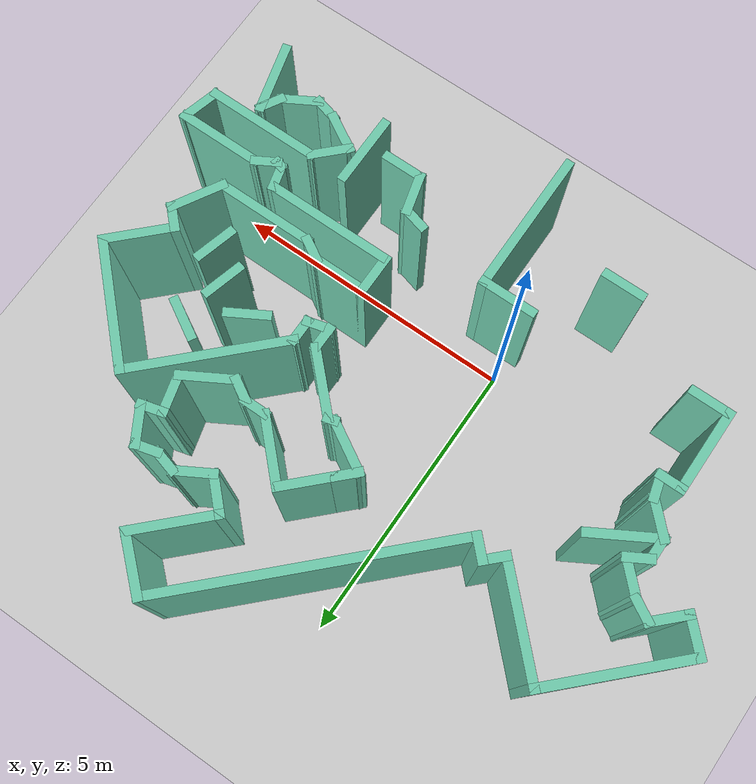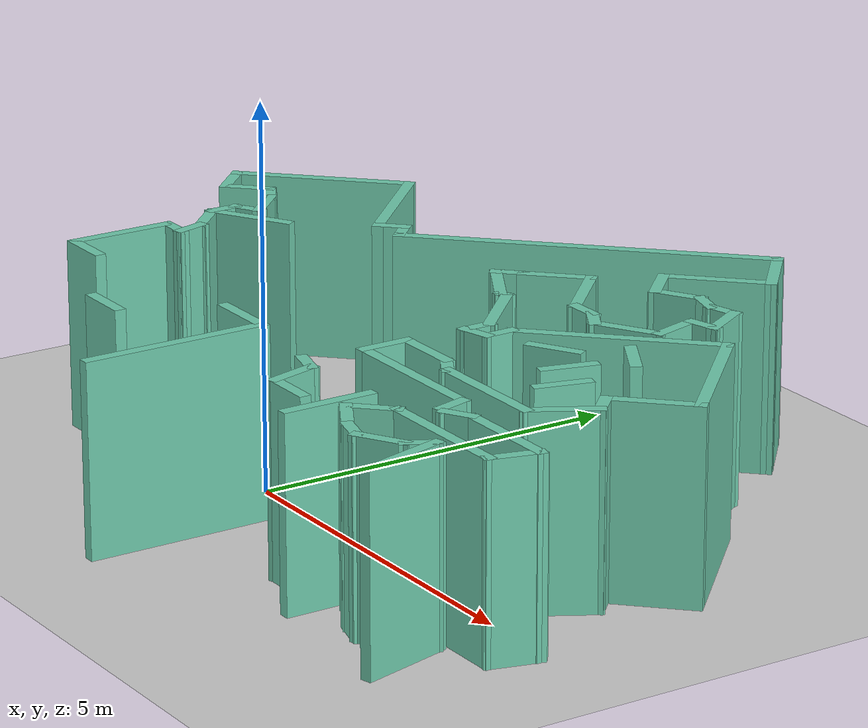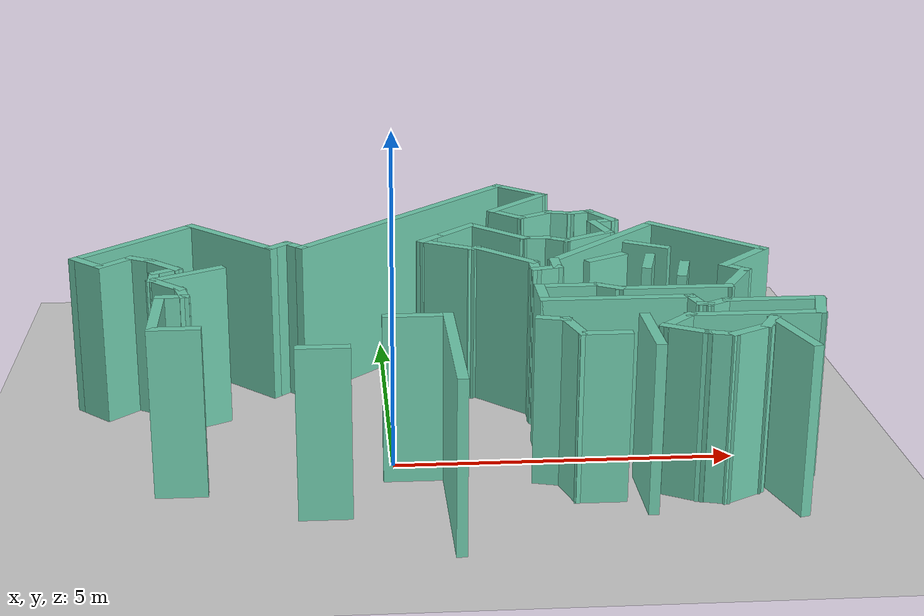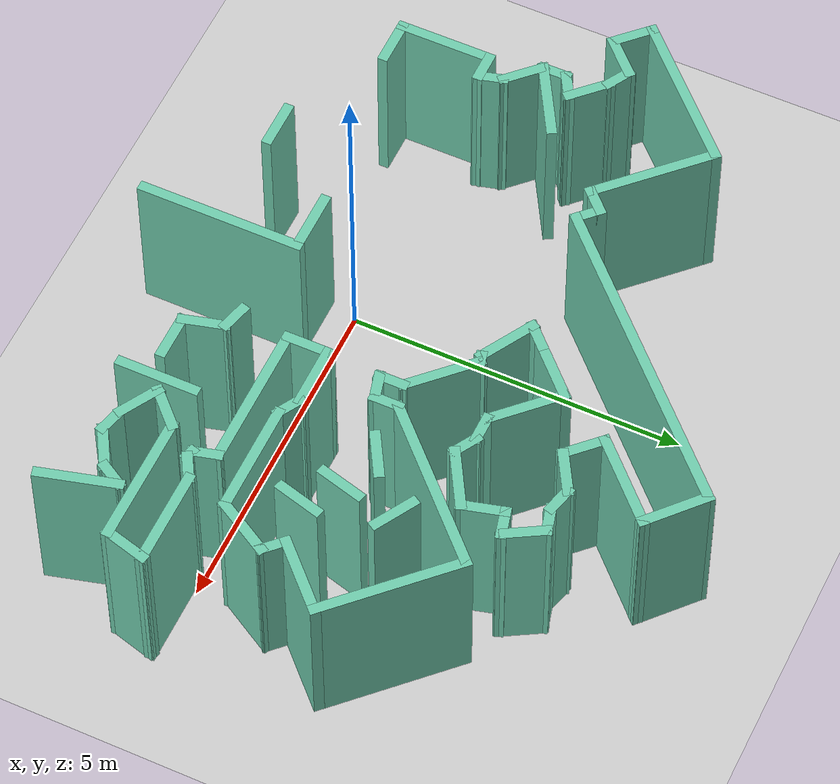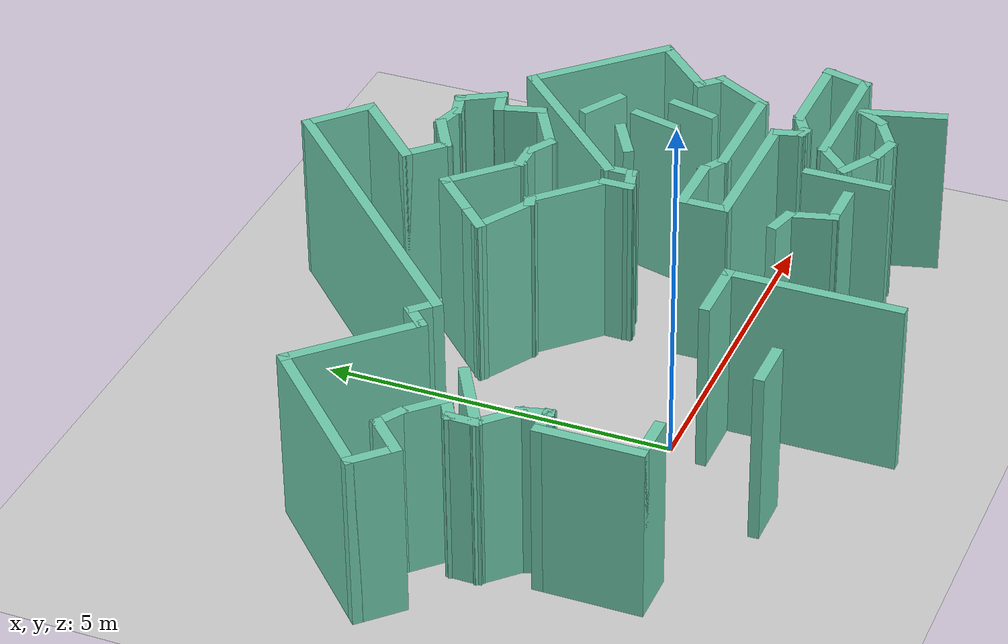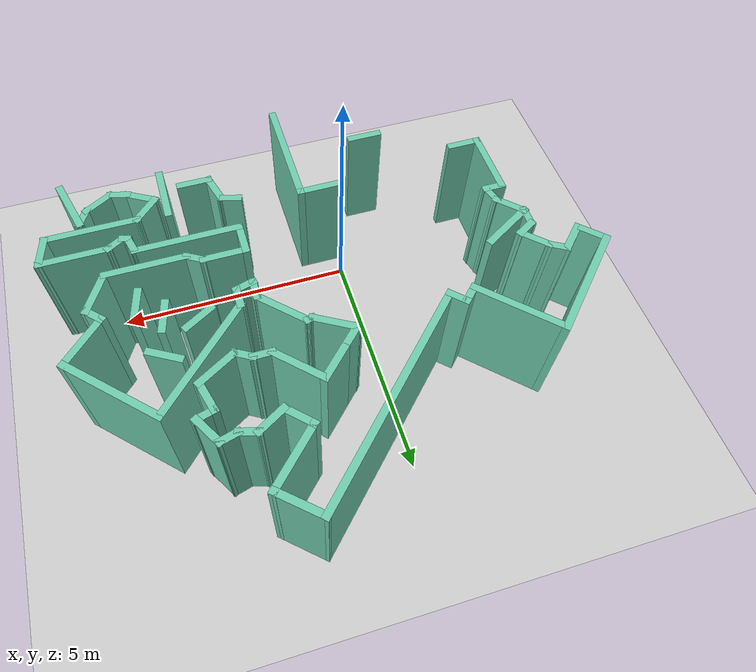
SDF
<sdf version="1.7">
 <world name="default">
  <model name="ground_plane">
   <static>1</static>
   <link name="link">
    <collision name="collision">
     <geometry><plane><normal>0 0 1</normal><size>100 100</size></plane></geometry>
     <surface>
      <contact><collide_bitmask>65535</collide_bitmask></contact>
      <friction><ode><mu>100</mu><mu2>50</mu2></ode></friction>
     </surface>
    </collision>
    <visual name="visual">
     <cast_shadows>0</cast_shadows>
     <geometry><plane><normal>0 0 1</normal><size>100 100</size></plane></geometry>
     <material>
      <script><uri>file://media/materials/scripts/gazebo.material</uri><name>Gazebo/Grey</name></script>
     </material>
    </visual>
   </link>
  </model>
  <model name="map_11">
   <pose>1.26174 -0.26535 0 0 -0 0</pose>
   <link name="Wall_1">
    <collision name="Wall_1_Collision">
     <geometry><box><size>5 0.15 2.5</size></box></geometry>
     <pose>0 0 1.25 0 -0 0</pose>
    </collision>
    <visual name="Wall_1_Visual">
     <pose>0 0 1.25 0 -0 0</pose>
     <geometry><box><size>5 0.15 2.5</size></box></geometry>
     <material>
      <script><uri>file://media/materials/scripts/gazebo.material</uri><name>Gazebo/Grey</name></script>
      <ambient>0.435294 0.796078 0.67451 1</ambient>
     </material>
     <meta><layer>0</layer></meta>
    </visual>
    <pose>-0.835333 4.76863 0 0 -0 -2.35619</pose>
   </link>
   <link name="Wall_10">
    <collision name="Wall_10_Collision">
     <geometry><box><size>0.5 0.15 2.5</size></box></geometry>
     <pose>0 0 1.25 0 -0 0</pose>
    </collision>
    <visual name="Wall_10_Visual">
     <pose>0 0 1.25 0 -0 0</pose>
     <geometry><box><size>0.5 0.15 2.5</size></box></geometry>
     <material>
      <script><uri>file://media/materials/scripts/gazebo.material</uri><name>Gazebo/Grey</name></script>
      <ambient>0.435294 0.796078 0.67451 1</ambient>
     </material>
     <meta><layer>0</layer></meta>
    </visual>
    <pose>-5.01481 2.61285 0 0 -0 -0.523599</pose>
   </link>
   <link name="Wall_100">
    <collision name="Wall_100_Collision">
     <geometry><box><size>1 0.15 2.5</size></box></geometry>
     <pose>0 0 1.25 0 -0 0</pose>
    </collision>
    <visual name="Wall_100_Visual">
     <pose>0 0 1.25 0 -0 0</pose>
     <geometry><box><size>1 0.15 2.5</size></box></geometry>
     <material>
      <script><uri>file://media/materials/scripts/gazebo.material</uri><name>Gazebo/Grey</name></script>
      <ambient>0.435294 0.796078 0.67451 1</ambient>
     </material>
     <meta><layer>0</layer></meta>
    </visual>
    <pose>3.8842 1.1324 0 0 -0 1.0472</pose>
   </link>
   <link name="Wall_101">
    <collision name="Wall_101_Collision">
     <geometry><box><size>0.5 0.15 2.5</size></box></geometry>
     <pose>0 0 1.25 0 -0 0</pose>
    </collision>
    <visual name="Wall_101_Visual">
     <pose>0 0 1.25 0 -0 0</pose>
     <geometry><box><size>0.5 0.15 2.5</size></box></geometry>
     <material>
      <script><uri>file://media/materials/scripts/gazebo.material</uri><name>Gazebo/Grey</name></script>
      <ambient>0.435294 0.796078 0.67451 1</ambient>
     </material>
     <meta><layer>0</layer></meta>
    </visual>
    <pose>3.97295 1.62421 0 0 -0 2.35619</pose>
   </link>
   <link name="Wall_102">
    <collision name="Wall_102_Collision">
     <geometry><box><size>1.25 0.15 2.5</size></box></geometry>
     <pose>0 0 1.25 0 -0 0</pose>
    </collision>
    <visual name="Wall_102_Visual">
     <pose>0 0 1.25 0 -0 0</pose>
     <geometry><box><size>1.25 0.15 2.5</size></box></geometry>
     <material>
      <script><uri>file://media/materials/scripts/gazebo.material</uri><name>Gazebo/Grey</name></script>
      <ambient>0.435294 0.796078 0.67451 1</ambient>
     </material>
     <meta><layer>0</layer></meta>
    </visual>
    <pose>4.23812 2.13686 0 0 -0 0.785398</pose>
   </link>
   <link name="Wall_105">
    <collision name="Wall_105_Collision">
     <geometry><box><size>2.25 0.15 2.5</size></box></geometry>
     <pose>0 0 1.25 0 -0 0</pose>
    </collision>
    <visual name="Wall_105_Visual">
     <pose>0 0 1.25 0 -0 0</pose>
     <geometry><box><size>2.25 0.15 2.5</size></box></geometry>
     <material>
      <script><uri>file://media/materials/scripts/gazebo.material</uri><name>Gazebo/Grey</name></script>
      <ambient>0.435294 0.796078 0.67451 1</ambient>
     </material>
     <meta><layer>0</layer></meta>
    </visual>
    <pose>3.88456 3.26823 0 0 -0 2.35619</pose>
   </link>
   <link name="Wall_106">
    <collision name="Wall_106_Collision">
     <geometry><box><size>2.75 0.15 2.5</size></box></geometry>
     <pose>0 0 1.25 0 -0 0</pose>
    </collision>
    <visual name="Wall_106_Visual">
     <pose>0 0 1.25 0 -0 0</pose>
     <geometry><box><size>2.75 0.15 2.5</size></box></geometry>
     <material>
      <script><uri>file://media/materials/scripts/gazebo.material</uri><name>Gazebo/Grey</name></script>
      <ambient>0.435294 0.796078 0.67451 1</ambient>
     </material>
     <meta><layer>0</layer></meta>
    </visual>
    <pose>2.22286 3.09145 0 0 -0 -2.35619</pose>
   </link>
   <link name="Wall_107">
    <collision name="Wall_107_Collision">
     <geometry><box><size>0.5 0.15 2.5</size></box></geometry>
     <pose>0 0 1.25 0 -0 0</pose>
    </collision>
    <visual name="Wall_107_Visual">
     <pose>0 0 1.25 0 -0 0</pose>
     <geometry><box><size>0.5 0.15 2.5</size></box></geometry>
     <material>
      <script><uri>file://media/materials/scripts/gazebo.material</uri><name>Gazebo/Grey</name></script>
      <ambient>0.435294 0.796078 0.67451 1</ambient>
     </material>
     <meta><layer>0</layer></meta>
    </visual>
    <pose>1.30363 1.99721 0 0 -0 -1.5708</pose>
   </link>
   <link name="Wall_108">
    <collision name="Wall_108_Collision">
     <geometry><box><size>0.5 0.15 2.5</size></box></geometry>
     <pose>0 0 1.25 0 -0 0</pose>
    </collision>
    <visual name="Wall_108_Visual">
     <pose>0 0 1.25 0 -0 0</pose>
     <geometry><box><size>0.5 0.15 2.5</size></box></geometry>
     <material>
      <script><uri>file://media/materials/scripts/gazebo.material</uri><name>Gazebo/Grey</name></script>
      <ambient>0.435294 0.796078 0.67451 1</ambient>
     </material>
     <meta><layer>0</layer></meta>
    </visual>
    <pose>1.13459 1.77692 0 0 -0 -2.87979</pose>
   </link>
   <link name="Wall_109">
    <collision name="Wall_109_Collision">
     <geometry><box><size>0.5 0.15 2.5</size></box></geometry>
     <pose>0 0 1.25 0 -0 0</pose>
    </collision>
    <visual name="Wall_109_Visual">
     <pose>0 0 1.25 0 -0 0</pose>
     <geometry><box><size>0.5 0.15 2.5</size></box></geometry>
     <material>
      <script><uri>file://media/materials/scripts/gazebo.material</uri><name>Gazebo/Grey</name></script>
      <ambient>0.435294 0.796078 0.67451 1</ambient>
     </material>
     <meta><layer>0</layer></meta>
    </visual>
    <pose>0.965551 1.90663 0 0 -0 1.5708</pose>
   </link>
   <link name="Wall_11">
    <collision name="Wall_11_Collision">
     <geometry><box><size>0.75 0.15 2.5</size></box></geometry>
     <pose>0 0 1.25 0 -0 0</pose>
    </collision>
    <visual name="Wall_11_Visual">
     <pose>0 0 1.25 0 -0 0</pose>
     <geometry><box><size>0.75 0.15 2.5</size></box></geometry>
     <material>
      <script><uri>file://media/materials/scripts/gazebo.material</uri><name>Gazebo/Grey</name></script>
      <ambient>0.435294 0.796078 0.67451 1</ambient>
     </material>
     <meta><layer>0</layer></meta>
    </visual>
    <pose>-4.65112 2.31322 0 0 -0 -0.785398</pose>
   </link>
   <link name="Wall_110">
    <collision name="Wall_110_Collision">
     <geometry><box><size>1.25 0.15 2.5</size></box></geometry>
     <pose>0 0 1.25 0 -0 0</pose>
    </collision>
    <visual name="Wall_110_Visual">
     <pose>0 0 1.25 0 -0 0</pose>
     <geometry><box><size>1.25 0.15 2.5</size></box></geometry>
     <material>
      <script><uri>file://media/materials/scripts/gazebo.material</uri><name>Gazebo/Grey</name></script>
      <ambient>0.435294 0.796078 0.67451 1</ambient>
     </material>
     <meta><layer>0</layer></meta>
    </visual>
    <pose>0.576643 2.47054 0 0 -0 2.35619</pose>
   </link>
   <link name="Wall_111">
    <collision name="Wall_111_Collision">
     <geometry><box><size>0.25 0.15 2.5</size></box></geometry>
     <pose>0 0 1.25 0 -0 0</pose>
    </collision>
    <visual name="Wall_111_Visual">
     <pose>0 0 1.25 0 -0 0</pose>
     <geometry><box><size>0.25 0.15 2.5</size></box></geometry>
     <material>
      <script><uri>file://media/materials/scripts/gazebo.material</uri><name>Gazebo/Grey</name></script>
      <ambient>0.435294 0.796078 0.67451 1</ambient>
     </material>
     <meta><layer>0</layer></meta>
    </visual>
    <pose>0.139438 2.84651 0 0 -0 -2.87979</pose>
   </link>
   <link name="Wall_112">
    <collision name="Wall_112_Collision">
     <geometry><box><size>1 0.15 2.5</size></box></geometry>
     <pose>0 0 1.25 0 -0 0</pose>
    </collision>
    <visual name="Wall_112_Visual">
     <pose>0 0 1.25 0 -0 0</pose>
     <geometry><box><size>1 0.15 2.5</size></box></geometry>
     <material>
      <script><uri>file://media/materials/scripts/gazebo.material</uri><name>Gazebo/Grey</name></script>
      <ambient>0.435294 0.796078 0.67451 1</ambient>
     </material>
     <meta><layer>0</layer></meta>
    </visual>
    <pose>-0.276919 3.04606 0 0 -0 2.61799</pose>
   </link>
   <link name="Wall_113">
    <collision name="Wall_113_Collision">
     <geometry><box><size>0.5 0.15 2.5</size></box></geometry>
     <pose>0 0 1.25 0 -0 0</pose>
    </collision>
    <visual name="Wall_113_Visual">
     <pose>0 0 1.25 0 -0 0</pose>
     <geometry><box><size>0.5 0.15 2.5</size></box></geometry>
     <material>
      <script><uri>file://media/materials/scripts/gazebo.material</uri><name>Gazebo/Grey</name></script>
      <ambient>0.435294 0.796078 0.67451 1</ambient>
     </material>
     <meta><layer>0</layer></meta>
    </visual>
    <pose>-0.521237 3.38231 0 0 -0 0.785398</pose>
   </link>
   <link name="Wall_114">
    <collision name="Wall_114_Collision">
     <geometry><box><size>1 0.15 2.5</size></box></geometry>
     <pose>0 0 1.25 0 -0 0</pose>
    </collision>
    <visual name="Wall_114_Visual">
     <pose>0 0 1.25 0 -0 0</pose>
     <geometry><box><size>1 0.15 2.5</size></box></geometry>
     <material>
      <script><uri>file://media/materials/scripts/gazebo.material</uri><name>Gazebo/Grey</name></script>
      <ambient>0.435294 0.796078 0.67451 1</ambient>
     </material>
     <meta><layer>0</layer></meta>
    </visual>
    <pose>-0.096972 3.80657 0 0 -0 0.785398</pose>
   </link>
   <link name="Wall_115">
    <collision name="Wall_115_Collision">
     <geometry><box><size>1.25 0.15 2.5</size></box></geometry>
     <pose>0 0 1.25 0 -0 0</pose>
    </collision>
    <visual name="Wall_115_Visual">
     <pose>0 0 1.25 0 -0 0</pose>
     <geometry><box><size>1.25 0.15 2.5</size></box></geometry>
     <material>
      <script><uri>file://media/materials/scripts/gazebo.material</uri><name>Gazebo/Grey</name></script>
      <ambient>0.435294 0.796078 0.67451 1</ambient>
     </material>
     <meta><layer>0</layer></meta>
    </visual>
    <pose>0.592457 3.71818 0 0 -0 -0.785398</pose>
   </link>
   <link name="Wall_116">
    <collision name="Wall_116_Collision">
     <geometry><box><size>0.5 0.15 2.5</size></box></geometry>
     <pose>0 0 1.25 0 -0 0</pose>
    </collision>
    <visual name="Wall_116_Visual">
     <pose>0 0 1.25 0 -0 0</pose>
     <geometry><box><size>0.5 0.15 2.5</size></box></geometry>
     <material>
      <script><uri>file://media/materials/scripts/gazebo.material</uri><name>Gazebo/Grey</name></script>
      <ambient>0.435294 0.796078 0.67451 1</ambient>
     </material>
     <meta><layer>0</layer></meta>
    </visual>
    <pose>1.15637 3.32927 0 0 -0 0</pose>
   </link>
   <link name="Wall_117">
    <collision name="Wall_117_Collision">
     <geometry><box><size>0.5 0.15 2.5</size></box></geometry>
     <pose>0 0 1.25 0 -0 0</pose>
    </collision>
    <visual name="Wall_117_Visual">
     <pose>0 0 1.25 0 -0 0</pose>
     <geometry><box><size>0.5 0.15 2.5</size></box></geometry>
     <material>
      <script><uri>file://media/materials/scripts/gazebo.material</uri><name>Gazebo/Grey</name></script>
      <ambient>0.435294 0.796078 0.67451 1</ambient>
     </material>
     <meta><layer>0</layer></meta>
    </visual>
    <pose>1.48292 3.24178 0 0 -0 -0.523599</pose>
   </link>
   <link name="Wall_118">
    <collision name="Wall_118_Collision">
     <geometry><box><size>1 0.15 2.5</size></box></geometry>
     <pose>0 0 1.25 0 -0 0</pose>
    </collision>
    <visual name="Wall_118_Visual">
     <pose>0 0 1.25 0 -0 0</pose>
     <geometry><box><size>1 0.15 2.5</size></box></geometry>
     <material>
      <script><uri>file://media/materials/scripts/gazebo.material</uri><name>Gazebo/Grey</name></script>
      <ambient>0.435294 0.796078 0.67451 1</ambient>
     </material>
     <meta><layer>0</layer></meta>
    </visual>
    <pose>2.00253 3.36678 0 0 -0 0.523599</pose>
   </link>
   <link name="Wall_119">
    <collision name="Wall_119_Collision">
     <geometry><box><size>0.75 0.15 2.5</size></box></geometry>
     <pose>0 0 1.25 0 -0 0</pose>
    </collision>
    <visual name="Wall_119_Visual">
     <pose>0 0 1.25 0 -0 0</pose>
     <geometry><box><size>0.75 0.15 2.5</size></box></geometry>
     <material>
      <script><uri>file://media/materials/scripts/gazebo.material</uri><name>Gazebo/Grey</name></script>
      <ambient>0.435294 0.796078 0.67451 1</ambient>
     </material>
     <meta><layer>0</layer></meta>
    </visual>
    <pose>2.29295 3.86905 0 0 -0 1.8326</pose>
   </link>
   <link name="Wall_12">
    <collision name="Wall_12_Collision">
     <geometry><box><size>0.5 0.15 2.5</size></box></geometry>
     <pose>0 0 1.25 0 -0 0</pose>
    </collision>
    <visual name="Wall_12_Visual">
     <pose>0 0 1.25 0 -0 0</pose>
     <geometry><box><size>0.5 0.15 2.5</size></box></geometry>
     <material>
      <script><uri>file://media/materials/scripts/gazebo.material</uri><name>Gazebo/Grey</name></script>
      <ambient>0.435294 0.796078 0.67451 1</ambient>
     </material>
     <meta><layer>0</layer></meta>
    </visual>
    <pose>-4.59054 2.01358 0 0 -0 -2.61799</pose>
   </link>
   <link name="Wall_120">
    <collision name="Wall_120_Collision">
     <geometry><box><size>0.5 0.15 2.5</size></box></geometry>
     <pose>0 0 1.25 0 -0 0</pose>
    </collision>
    <visual name="Wall_120_Visual">
     <pose>0 0 1.25 0 -0 0</pose>
     <geometry><box><size>0.5 0.15 2.5</size></box></geometry>
     <material>
      <script><uri>file://media/materials/scripts/gazebo.material</uri><name>Gazebo/Grey</name></script>
      <ambient>0.435294 0.796078 0.67451 1</ambient>
     </material>
     <meta><layer>0</layer></meta>
    </visual>
    <pose>2.38434 4.20412 0 0 -0 0.261799</pose>
   </link>
   <link name="Wall_121">
    <collision name="Wall_121_Collision">
     <geometry><box><size>0.75 0.15 2.5</size></box></geometry>
     <pose>0 0 1.25 0 -0 0</pose>
    </collision>
    <visual name="Wall_121_Visual">
     <pose>0 0 1.25 0 -0 0</pose>
     <geometry><box><size>0.75 0.15 2.5</size></box></geometry>
     <material>
      <script><uri>file://media/materials/scripts/gazebo.material</uri><name>Gazebo/Grey</name></script>
      <ambient>0.435294 0.796078 0.67451 1</ambient>
     </material>
     <meta><layer>0</layer></meta>
    </visual>
    <pose>2.40338 4.50922 0 0 -0 2.0944</pose>
   </link>
   <link name="Wall_122">
    <collision name="Wall_122_Collision">
     <geometry><box><size>0.5 0.15 2.5</size></box></geometry>
     <pose>0 0 1.25 0 -0 0</pose>
    </collision>
    <visual name="Wall_122_Visual">
     <pose>0 0 1.25 0 -0 0</pose>
     <geometry><box><size>0.5 0.15 2.5</size></box></geometry>
     <material>
      <script><uri>file://media/materials/scripts/gazebo.material</uri><name>Gazebo/Grey</name></script>
      <ambient>0.435294 0.796078 0.67451 1</ambient>
     </material>
     <meta><layer>0</layer></meta>
    </visual>
    <pose>2.08434 4.72374 0 0 -0 -2.87979</pose>
   </link>
   <link name="Wall_123">
    <collision name="Wall_123_Collision">
     <geometry><box><size>0.5 0.15 2.5</size></box></geometry>
     <pose>0 0 1.25 0 -0 0</pose>
    </collision>
    <visual name="Wall_123_Visual">
     <pose>0 0 1.25 0 -0 0</pose>
     <geometry><box><size>0.5 0.15 2.5</size></box></geometry>
     <material>
      <script><uri>file://media/materials/scripts/gazebo.material</uri><name>Gazebo/Grey</name></script>
      <ambient>0.435294 0.796078 0.67451 1</ambient>
     </material>
     <meta><layer>0</layer></meta>
    </visual>
    <pose>1.74627 4.72374 0 0 -0 2.87979</pose>
   </link>
   <link name="Wall_124">
    <collision name="Wall_124_Collision">
     <geometry><box><size>0.75 0.15 2.5</size></box></geometry>
     <pose>0 0 1.25 0 -0 0</pose>
    </collision>
    <visual name="Wall_124_Visual">
     <pose>0 0 1.25 0 -0 0</pose>
     <geometry><box><size>0.75 0.15 2.5</size></box></geometry>
     <material>
      <script><uri>file://media/materials/scripts/gazebo.material</uri><name>Gazebo/Grey</name></script>
      <ambient>0.435294 0.796078 0.67451 1</ambient>
     </material>
     <meta><layer>0</layer></meta>
    </visual>
    <pose>1.31742 4.61903 0 0 -0 -2.61799</pose>
   </link>
   <link name="Wall_125">
    <collision name="Wall_125_Collision">
     <geometry><box><size>0.75 0.15 2.5</size></box></geometry>
     <pose>0 0 1.25 0 -0 0</pose>
    </collision>
    <visual name="Wall_125_Visual">
     <pose>0 0 1.25 0 -0 0</pose>
     <geometry><box><size>0.75 0.15 2.5</size></box></geometry>
     <material>
      <script><uri>file://media/materials/scripts/gazebo.material</uri><name>Gazebo/Grey</name></script>
      <ambient>0.435294 0.796078 0.67451 1</ambient>
     </material>
     <meta><layer>0</layer></meta>
    </visual>
    <pose>0.845483 4.68116 0 0 -0 2.35619</pose>
   </link>
   <link name="Wall_126">
    <collision name="Wall_126_Collision">
     <geometry><box><size>1.5 0.15 2.5</size></box></geometry>
     <pose>0 0 1.25 0 -0 0</pose>
    </collision>
    <visual name="Wall_126_Visual">
     <pose>0 0 1.25 0 -0 0</pose>
     <geometry><box><size>1.5 0.15 2.5</size></box></geometry>
     <material>
      <script><uri>file://media/materials/scripts/gazebo.material</uri><name>Gazebo/Grey</name></script>
      <ambient>0.435294 0.796078 0.67451 1</ambient>
     </material>
     <meta><layer>0</layer></meta>
    </visual>
    <pose>1.11065 5.37059 0 0 -0 0.785398</pose>
   </link>
   <link name="Wall_129">
    <collision name="Wall_129_Collision">
     <geometry><box><size>1.10177 0.15 2.5</size></box></geometry>
     <pose>0 0 1.25 0 -0 0</pose>
    </collision>
    <visual name="Wall_129_Visual">
     <pose>0 0 1.25 0 -0 0</pose>
     <geometry><box><size>1.10177 0.15 2.5</size></box></geometry>
     <material>
      <script><uri>file://media/materials/scripts/gazebo.material</uri><name>Gazebo/Grey</name></script>
      <ambient>0.435294 0.796078 0.67451 1</ambient>
     </material>
     <meta><layer>0</layer></meta>
    </visual>
    <pose>1.23367 6.16563 0 0 -0 2.41051</pose>
   </link>
   <link name="Wall_13">
    <collision name="Wall_13_Collision">
     <geometry><box><size>0.5 0.15 2.5</size></box></geometry>
     <pose>0 0 1.25 0 -0 0</pose>
    </collision>
    <visual name="Wall_13_Visual">
     <pose>0 0 1.25 0 -0 0</pose>
     <geometry><box><size>0.5 0.15 2.5</size></box></geometry>
     <material>
      <script><uri>file://media/materials/scripts/gazebo.material</uri><name>Gazebo/Grey</name></script>
      <ambient>0.435294 0.796078 0.67451 1</ambient>
     </material>
     <meta><layer>0</layer></meta>
    </visual>
    <pose>-4.7421 1.75108 0 0 -0 -1.5708</pose>
   </link>
   <link name="Wall_131">
    <collision name="Wall_131_Collision">
     <geometry><box><size>1.25 0.15 2.5</size></box></geometry>
     <pose>0 0 1.25 0 -0 0</pose>
    </collision>
    <visual name="Wall_131_Visual">
     <pose>0 0 1.25 0 -0 0</pose>
     <geometry><box><size>1.25 0.15 2.5</size></box></geometry>
     <material>
      <script><uri>file://media/materials/scripts/gazebo.material</uri><name>Gazebo/Grey</name></script>
      <ambient>0.435294 0.796078 0.67451 1</ambient>
     </material>
     <meta><layer>0</layer></meta>
    </visual>
    <pose>-4.26578 1.85108 0 0 -0 0.523599</pose>
   </link>
   <link name="Wall_133">
    <collision name="Wall_133_Collision">
     <geometry><box><size>1.25 0.15 2.5</size></box></geometry>
     <pose>0 0 1.25 0 -0 0</pose>
    </collision>
    <visual name="Wall_133_Visual">
     <pose>0 0 1.25 0 -0 0</pose>
     <geometry><box><size>1.25 0.15 2.5</size></box></geometry>
     <material>
      <script><uri>file://media/materials/scripts/gazebo.material</uri><name>Gazebo/Grey</name></script>
      <ambient>0.435294 0.796078 0.67451 1</ambient>
     </material>
     <meta><layer>0</layer></meta>
    </visual>
    <pose>2.22342 -0.962039 0 0 -0 -1.5708</pose>
   </link>
   <link name="Wall_138">
    <collision name="Wall_138_Collision">
     <geometry><box><size>0.75 0.15 2.5</size></box></geometry>
     <pose>0 0 1.25 0 -0 0</pose>
    </collision>
    <visual name="Wall_138_Visual">
     <pose>0 0 1.25 0 -0 0</pose>
     <geometry><box><size>0.75 0.15 2.5</size></box></geometry>
     <material>
      <script><uri>file://media/materials/scripts/gazebo.material</uri><name>Gazebo/Grey</name></script>
      <ambient>0.435294 0.796078 0.67451 1</ambient>
     </material>
     <meta><layer>0</layer></meta>
    </visual>
    <pose>-2.26461 -1.36965 0 0 -0 -3.14159</pose>
   </link>
   <link name="Wall_14">
    <collision name="Wall_14_Collision">
     <geometry><box><size>0.75 0.15 2.5</size></box></geometry>
     <pose>0 0 1.25 0 -0 0</pose>
    </collision>
    <visual name="Wall_14_Visual">
     <pose>0 0 1.25 0 -0 0</pose>
     <geometry><box><size>0.75 0.15 2.5</size></box></geometry>
     <material>
      <script><uri>file://media/materials/scripts/gazebo.material</uri><name>Gazebo/Grey</name></script>
      <ambient>0.435294 0.796078 0.67451 1</ambient>
     </material>
     <meta><layer>0</layer></meta>
    </visual>
    <pose>-4.52997 1.36395 0 0 -0 -0.785398</pose>
   </link>
   <link name="Wall_140">
    <collision name="Wall_140_Collision">
     <geometry><box><size>0.75 0.15 2.5</size></box></geometry>
     <pose>0 0 1.25 0 -0 0</pose>
    </collision>
    <visual name="Wall_140_Visual">
     <pose>0 0 1.25 0 -0 0</pose>
     <geometry><box><size>0.75 0.15 2.5</size></box></geometry>
     <material>
      <script><uri>file://media/materials/scripts/gazebo.material</uri><name>Gazebo/Grey</name></script>
      <ambient>0.435294 0.796078 0.67451 1</ambient>
     </material>
     <meta><layer>0</layer></meta>
    </visual>
    <pose>2.85563 2.84279 0 0 -0 -0.523599</pose>
   </link>
   <link name="Wall_142">
    <collision name="Wall_142_Collision">
     <geometry><box><size>0.75 0.15 2.5</size></box></geometry>
     <pose>0 0 1.25 0 -0 0</pose>
    </collision>
    <visual name="Wall_142_Visual">
     <pose>0 0 1.25 0 -0 0</pose>
     <geometry><box><size>0.75 0.15 2.5</size></box></geometry>
     <material>
      <script><uri>file://media/materials/scripts/gazebo.material</uri><name>Gazebo/Grey</name></script>
      <ambient>0.435294 0.796078 0.67451 1</ambient>
     </material>
     <meta><layer>0</layer></meta>
    </visual>
    <pose>3.18319 1.6124 0 0 -0 -1.8326</pose>
   </link>
   <link name="Wall_144">
    <collision name="Wall_144_Collision">
     <geometry><box><size>0.75 0.15 2.5</size></box></geometry>
     <pose>0 0 1.25 0 -0 0</pose>
    </collision>
    <visual name="Wall_144_Visual">
     <pose>0 0 1.25 0 -0 0</pose>
     <geometry><box><size>0.75 0.15 2.5</size></box></geometry>
     <material>
      <script><uri>file://media/materials/scripts/gazebo.material</uri><name>Gazebo/Grey</name></script>
      <ambient>0.435294 0.796078 0.67451 1</ambient>
     </material>
     <meta><layer>0</layer></meta>
    </visual>
    <pose>2.11083 2.23838 0 0 -0 0.523599</pose>
   </link>
   <link name="Wall_146">
    <collision name="Wall_146_Collision">
     <geometry><box><size>0.75 0.15 2.5</size></box></geometry>
     <pose>0 0 1.25 0 -0 0</pose>
    </collision>
    <visual name="Wall_146_Visual">
     <pose>0 0 1.25 0 -0 0</pose>
     <geometry><box><size>0.75 0.15 2.5</size></box></geometry>
     <material>
      <script><uri>file://media/materials/scripts/gazebo.material</uri><name>Gazebo/Grey</name></script>
      <ambient>0.435294 0.796078 0.67451 1</ambient>
     </material>
     <meta><layer>0</layer></meta>
    </visual>
    <pose>2.73098 2.0114 0 0 -0 -1.8326</pose>
   </link>
   <link name="Wall_15">
    <collision name="Wall_15_Collision">
     <geometry><box><size>0.5 0.15 2.5</size></box></geometry>
     <pose>0 0 1.25 0 -0 0</pose>
    </collision>
    <visual name="Wall_15_Visual">
     <pose>0 0 1.25 0 -0 0</pose>
     <geometry><box><size>0.5 0.15 2.5</size></box></geometry>
     <material>
      <script><uri>file://media/materials/scripts/gazebo.material</uri><name>Gazebo/Grey</name></script>
      <ambient>0.435294 0.796078 0.67451 1</ambient>
     </material>
     <meta><layer>0</layer></meta>
    </visual>
    <pose>-4.27254 0.982783 0 0 -0 -1.309</pose>
   </link>
   <link name="Wall_16">
    <collision name="Wall_16_Collision">
     <geometry><box><size>0.5 0.15 2.5</size></box></geometry>
     <pose>0 0 1.25 0 -0 0</pose>
    </collision>
    <visual name="Wall_16_Visual">
     <pose>0 0 1.25 0 -0 0</pose>
     <geometry><box><size>0.5 0.15 2.5</size></box></geometry>
     <material>
      <script><uri>file://media/materials/scripts/gazebo.material</uri><name>Gazebo/Grey</name></script>
      <ambient>0.435294 0.796078 0.67451 1</ambient>
     </material>
     <meta><layer>0</layer></meta>
    </visual>
    <pose>-4.40225 0.813746 0 0 -0 3.14159</pose>
   </link>
   <link name="Wall_17">
    <collision name="Wall_17_Collision">
     <geometry><box><size>1.5 0.15 2.5</size></box></geometry>
     <pose>0 0 1.25 0 -0 0</pose>
    </collision>
    <visual name="Wall_17_Visual">
     <pose>0 0 1.25 0 -0 0</pose>
     <geometry><box><size>1.5 0.15 2.5</size></box></geometry>
     <material>
      <script><uri>file://media/materials/scripts/gazebo.material</uri><name>Gazebo/Grey</name></script>
      <ambient>0.435294 0.796078 0.67451 1</ambient>
     </material>
     <meta><layer>0</layer></meta>
    </visual>
    <pose>-4.57725 0.138746 0 0 -0 -1.5708</pose>
   </link>
   <link name="Wall_18">
    <collision name="Wall_18_Collision">
     <geometry><box><size>0.75 0.15 2.5</size></box></geometry>
     <pose>0 0 1.25 0 -0 0</pose>
    </collision>
    <visual name="Wall_18_Visual">
     <pose>0 0 1.25 0 -0 0</pose>
     <geometry><box><size>0.75 0.15 2.5</size></box></geometry>
     <material>
      <script><uri>file://media/materials/scripts/gazebo.material</uri><name>Gazebo/Grey</name></script>
      <ambient>0.435294 0.796078 0.67451 1</ambient>
     </material>
     <meta><layer>0</layer></meta>
    </visual>
    <pose>-4.27725 -0.536255 0 0 -0 0</pose>
   </link>
   <link name="Wall_2">
    <collision name="Wall_2_Collision">
     <geometry><box><size>0.5 0.15 2.5</size></box></geometry>
     <pose>0 0 1.25 0 -0 0</pose>
    </collision>
    <visual name="Wall_2_Visual">
     <pose>0 0 1.25 0 -0 0</pose>
     <geometry><box><size>0.5 0.15 2.5</size></box></geometry>
     <material>
      <script><uri>file://media/materials/scripts/gazebo.material</uri><name>Gazebo/Grey</name></script>
      <ambient>0.435294 0.796078 0.67451 1</ambient>
     </material>
     <meta><layer>0</layer></meta>
    </visual>
    <pose>-2.67381 3.17765 0 0 -0 2.35619</pose>
   </link>
   <link name="Wall_3">
    <collision name="Wall_3_Collision">
     <geometry><box><size>0.5 0.15 2.5</size></box></geometry>
     <pose>0 0 1.25 0 -0 0</pose>
    </collision>
    <visual name="Wall_3_Visual">
     <pose>0 0 1.25 0 -0 0</pose>
     <geometry><box><size>0.5 0.15 2.5</size></box></geometry>
     <material>
      <script><uri>file://media/materials/scripts/gazebo.material</uri><name>Gazebo/Grey</name></script>
      <ambient>0.435294 0.796078 0.67451 1</ambient>
     </material>
     <meta><layer>0</layer></meta>
    </visual>
    <pose>-2.9213 3.17765 0 0 -0 -2.35619</pose>
   </link>
   <link name="Wall_4">
    <collision name="Wall_4_Collision">
     <geometry><box><size>2 0.15 2.5</size></box></geometry>
     <pose>0 0 1.25 0 -0 0</pose>
    </collision>
    <visual name="Wall_4_Visual">
     <pose>0 0 1.25 0 -0 0</pose>
     <geometry><box><size>2 0.15 2.5</size></box></geometry>
     <material>
      <script><uri>file://media/materials/scripts/gazebo.material</uri><name>Gazebo/Grey</name></script>
      <ambient>0.435294 0.796078 0.67451 1</ambient>
     </material>
     <meta><layer>0</layer></meta>
    </visual>
    <pose>-3.69912 3.70797 0 0 -0 2.35619</pose>
   </link>
   <link name="Wall_40">
    <collision name="Wall_40_Collision">
     <geometry><box><size>1 0.15 2.5</size></box></geometry>
     <pose>0 0 1.25 0 -0 0</pose>
    </collision>
    <visual name="Wall_40_Visual">
     <pose>0 0 1.25 0 -0 0</pose>
     <geometry><box><size>1 0.15 2.5</size></box></geometry>
     <material>
      <script><uri>file://media/materials/scripts/gazebo.material</uri><name>Gazebo/Grey</name></script>
      <ambient>0.435294 0.796078 0.67451 1</ambient>
     </material>
     <meta><layer>0</layer></meta>
    </visual>
    <pose>-0.933168 -0.212733 0 0 -0 0</pose>
   </link>
   <link name="Wall_41">
    <collision name="Wall_41_Collision">
     <geometry><box><size>2.5 0.15 2.5</size></box></geometry>
     <pose>0 0 1.25 0 -0 0</pose>
    </collision>
    <visual name="Wall_41_Visual">
     <pose>0 0 1.25 0 -0 0</pose>
     <geometry><box><size>2.5 0.15 2.5</size></box></geometry>
     <material>
      <script><uri>file://media/materials/scripts/gazebo.material</uri><name>Gazebo/Grey</name></script>
      <ambient>0.435294 0.796078 0.67451 1</ambient>
     </material>
     <meta><layer>0</layer></meta>
    </visual>
    <pose>-0.508168 -1.38773 0 0 -0 -1.5708</pose>
   </link>
   <link name="Wall_5">
    <collision name="Wall_5_Collision">
     <geometry><box><size>2.5 0.15 2.5</size></box></geometry>
     <pose>0 0 1.25 0 -0 0</pose>
    </collision>
    <visual name="Wall_5_Visual">
     <pose>0 0 1.25 0 -0 0</pose>
     <geometry><box><size>2.5 0.15 2.5</size></box></geometry>
     <material>
      <script><uri>file://media/materials/scripts/gazebo.material</uri><name>Gazebo/Grey</name></script>
      <ambient>0.435294 0.796078 0.67451 1</ambient>
     </material>
     <meta><layer>0</layer></meta>
    </visual>
    <pose>-5.18404 3.5312 0 0 -0 -2.35619</pose>
   </link>
   <link name="Wall_74">
    <collision name="Wall_74_Collision">
     <geometry><box><size>0.5 0.15 2.5</size></box></geometry>
     <pose>0 0 1.25 0 -0 0</pose>
    </collision>
    <visual name="Wall_74_Visual">
     <pose>0 0 1.25 0 -0 0</pose>
     <geometry><box><size>0.5 0.15 2.5</size></box></geometry>
     <material>
      <script><uri>file://media/materials/scripts/gazebo.material</uri><name>Gazebo/Grey</name></script>
      <ambient>0.435294 0.796078 0.67451 1</ambient>
     </material>
     <meta><layer>0</layer></meta>
    </visual>
    <pose>0.933928 -0.459031 0 0 -0 -0.261799</pose>
   </link>
   <link name="Wall_75">
    <collision name="Wall_75_Collision">
     <geometry><box><size>0.75 0.15 2.5</size></box></geometry>
     <pose>0 0 1.25 0 -0 0</pose>
    </collision>
    <visual name="Wall_75_Visual">
     <pose>0 0 1.25 0 -0 0</pose>
     <geometry><box><size>0.75 0.15 2.5</size></box></geometry>
     <material>
      <script><uri>file://media/materials/scripts/gazebo.material</uri><name>Gazebo/Grey</name></script>
      <ambient>0.435294 0.796078 0.67451 1</ambient>
     </material>
     <meta><layer>0</layer></meta>
    </visual>
    <pose>1.18061 -0.794102 0 0 -0 -1.309</pose>
   </link>
   <link name="Wall_78">
    <collision name="Wall_78_Collision">
     <geometry><box><size>0.75 0.15 2.5</size></box></geometry>
     <pose>0 0 1.25 0 -0 0</pose>
    </collision>
    <visual name="Wall_78_Visual">
     <pose>0 0 1.25 0 -0 0</pose>
     <geometry><box><size>0.75 0.15 2.5</size></box></geometry>
     <material>
      <script><uri>file://media/materials/scripts/gazebo.material</uri><name>Gazebo/Grey</name></script>
      <ambient>0.435294 0.796078 0.67451 1</ambient>
     </material>
     <meta><layer>0</layer></meta>
    </visual>
    <pose>1.55826 -1.08388 0 0 -0 0</pose>
   </link>
   <link name="Wall_8">
    <collision name="Wall_8_Collision">
     <geometry><box><size>0.75 0.15 2.5</size></box></geometry>
     <pose>0 0 1.25 0 -0 0</pose>
    </collision>
    <visual name="Wall_8_Visual">
     <pose>0 0 1.25 0 -0 0</pose>
     <geometry><box><size>0.75 0.15 2.5</size></box></geometry>
     <material>
      <script><uri>file://media/materials/scripts/gazebo.material</uri><name>Gazebo/Grey</name></script>
      <ambient>0.435294 0.796078 0.67451 1</ambient>
     </material>
     <meta><layer>0</layer></meta>
    </visual>
    <pose>-5.80276 2.48822 0 0 -0 -0.785398</pose>
   </link>
   <link name="Wall_83">
    <collision name="Wall_83_Collision">
     <geometry><box><size>1.25 0.15 2.5</size></box></geometry>
     <pose>0 0 1.25 0 -0 0</pose>
    </collision>
    <visual name="Wall_83_Visual">
     <pose>0 0 1.25 0 -0 0</pose>
     <geometry><box><size>1.25 0.15 2.5</size></box></geometry>
     <material>
      <script><uri>file://media/materials/scripts/gazebo.material</uri><name>Gazebo/Grey</name></script>
      <ambient>0.435294 0.796078 0.67451 1</ambient>
     </material>
     <meta><layer>0</layer></meta>
    </visual>
    <pose>4.12398 -1.17217 0 0 -0 1.8326</pose>
   </link>
   <link name="Wall_84">
    <collision name="Wall_84_Collision">
     <geometry><box><size>0.5 0.15 2.5</size></box></geometry>
     <pose>0 0 1.25 0 -0 0</pose>
    </collision>
    <visual name="Wall_84_Visual">
     <pose>0 0 1.25 0 -0 0</pose>
     <geometry><box><size>0.5 0.15 2.5</size></box></geometry>
     <material>
      <script><uri>file://media/materials/scripts/gazebo.material</uri><name>Gazebo/Grey</name></script>
      <ambient>0.435294 0.796078 0.67451 1</ambient>
     </material>
     <meta><layer>0</layer></meta>
    </visual>
    <pose>3.89412 -0.792466 0 0 -0 -2.0944</pose>
   </link>
   <link name="Wall_85">
    <collision name="Wall_85_Collision">
     <geometry><box><size>0.75 0.15 2.5</size></box></geometry>
     <pose>0 0 1.25 0 -0 0</pose>
    </collision>
    <visual name="Wall_85_Visual">
     <pose>0 0 1.25 0 -0 0</pose>
     <geometry><box><size>0.75 0.15 2.5</size></box></geometry>
     <material>
      <script><uri>file://media/materials/scripts/gazebo.material</uri><name>Gazebo/Grey</name></script>
      <ambient>0.435294 0.796078 0.67451 1</ambient>
     </material>
     <meta><layer>0</layer></meta>
    </visual>
    <pose>3.54682 -1.09402 0 0 -0 -2.61799</pose>
   </link>
   <link name="Wall_86">
    <collision name="Wall_86_Collision">
     <geometry><box><size>0.5 0.15 2.5</size></box></geometry>
     <pose>0 0 1.25 0 -0 0</pose>
    </collision>
    <visual name="Wall_86_Visual">
     <pose>0 0 1.25 0 -0 0</pose>
     <geometry><box><size>0.5 0.15 2.5</size></box></geometry>
     <material>
      <script><uri>file://media/materials/scripts/gazebo.material</uri><name>Gazebo/Grey</name></script>
      <ambient>0.435294 0.796078 0.67451 1</ambient>
     </material>
     <meta><layer>0</layer></meta>
    </visual>
    <pose>3.11797 -1.19873 0 0 -0 2.87979</pose>
   </link>
   <link name="Wall_87">
    <collision name="Wall_87_Collision">
     <geometry><box><size>0.75 0.15 2.5</size></box></geometry>
     <pose>0 0 1.25 0 -0 0</pose>
    </collision>
    <visual name="Wall_87_Visual">
     <pose>0 0 1.25 0 -0 0</pose>
     <geometry><box><size>0.75 0.15 2.5</size></box></geometry>
     <material>
      <script><uri>file://media/materials/scripts/gazebo.material</uri><name>Gazebo/Grey</name></script>
      <ambient>0.435294 0.796078 0.67451 1</ambient>
     </material>
     <meta><layer>0</layer></meta>
    </visual>
    <pose>2.68913 -1.00343 0 0 -0 2.61799</pose>
   </link>
   <link name="Wall_88">
    <collision name="Wall_88_Collision">
     <geometry><box><size>0.75 0.15 2.5</size></box></geometry>
     <pose>0 0 1.25 0 -0 0</pose>
    </collision>
    <visual name="Wall_88_Visual">
     <pose>0 0 1.25 0 -0 0</pose>
     <geometry><box><size>0.75 0.15 2.5</size></box></geometry>
     <material>
      <script><uri>file://media/materials/scripts/gazebo.material</uri><name>Gazebo/Grey</name></script>
      <ambient>0.435294 0.796078 0.67451 1</ambient>
     </material>
     <meta><layer>0</layer></meta>
    </visual>
    <pose>2.64145 -0.641301 0 0 -0 0.785398</pose>
   </link>
   <link name="Wall_89">
    <collision name="Wall_89_Collision">
     <geometry><box><size>2 0.15 2.5</size></box></geometry>
     <pose>0 0 1.25 0 -0 0</pose>
    </collision>
    <visual name="Wall_89_Visual">
     <pose>0 0 1.25 0 -0 0</pose>
     <geometry><box><size>2 0.15 2.5</size></box></geometry>
     <material>
      <script><uri>file://media/materials/scripts/gazebo.material</uri><name>Gazebo/Grey</name></script>
      <ambient>0.435294 0.796078 0.67451 1</ambient>
     </material>
     <meta><layer>0</layer></meta>
    </visual>
    <pose>3.77859 -0.429169 0 0 -0 0</pose>
   </link>
   <link name="Wall_9">
    <collision name="Wall_9_Collision">
     <geometry><box><size>0.75 0.15 2.5</size></box></geometry>
     <pose>0 0 1.25 0 -0 0</pose>
    </collision>
    <visual name="Wall_9_Visual">
     <pose>0 0 1.25 0 -0 0</pose>
     <geometry><box><size>0.75 0.15 2.5</size></box></geometry>
     <material>
      <script><uri>file://media/materials/scripts/gazebo.material</uri><name>Gazebo/Grey</name></script>
      <ambient>0.435294 0.796078 0.67451 1</ambient>
     </material>
     <meta><layer>0</layer></meta>
    </visual>
    <pose>-5.37849 2.48822 0 0 -0 0.785398</pose>
   </link>
   <link name="Wall_90">
    <collision name="Wall_90_Collision">
     <geometry><box><size>0.75 0.15 2.5</size></box></geometry>
     <pose>0 0 1.25 0 -0 0</pose>
    </collision>
    <visual name="Wall_90_Visual">
     <pose>0 0 1.25 0 -0 0</pose>
     <geometry><box><size>0.75 0.15 2.5</size></box></geometry>
     <material>
      <script><uri>file://media/materials/scripts/gazebo.material</uri><name>Gazebo/Grey</name></script>
      <ambient>0.435294 0.796078 0.67451 1</ambient>
     </material>
     <meta><layer>0</layer></meta>
    </visual>
    <pose>4.78123 -0.139391 0 0 -0 1.309</pose>
   </link>
   <link name="Wall_91">
    <collision name="Wall_91_Collision">
     <geometry><box><size>1.5 0.15 2.5</size></box></geometry>
     <pose>0 0 1.25 0 -0 0</pose>
    </collision>
    <visual name="Wall_91_Visual">
     <pose>0 0 1.25 0 -0 0</pose>
     <geometry><box><size>1.5 0.15 2.5</size></box></geometry>
     <material>
      <script><uri>file://media/materials/scripts/gazebo.material</uri><name>Gazebo/Grey</name></script>
      <ambient>0.435294 0.796078 0.67451 1</ambient>
     </material>
     <meta><layer>0</layer></meta>
    </visual>
    <pose>4.18388 0.150386 0 0 -0 3.14159</pose>
   </link>
   <link name="Wall_92">
    <collision name="Wall_92_Collision">
     <geometry><box><size>0.5 0.15 2.5</size></box></geometry>
     <pose>0 0 1.25 0 -0 0</pose>
    </collision>
    <visual name="Wall_92_Visual">
     <pose>0 0 1.25 0 -0 0</pose>
     <geometry><box><size>0.5 0.15 2.5</size></box></geometry>
     <material>
      <script><uri>file://media/materials/scripts/gazebo.material</uri><name>Gazebo/Grey</name></script>
      <ambient>0.435294 0.796078 0.67451 1</ambient>
     </material>
     <meta><layer>0</layer></meta>
    </visual>
    <pose>3.35732 0.062886 0 0 -0 -2.61799</pose>
   </link>
   <link name="Wall_93">
    <collision name="Wall_93_Collision">
     <geometry><box><size>0.25 0.15 2.5</size></box></geometry>
     <pose>0 0 1.25 0 -0 0</pose>
    </collision>
    <visual name="Wall_93_Visual">
     <pose>0 0 1.25 0 -0 0</pose>
     <geometry><box><size>0.25 0.15 2.5</size></box></geometry>
     <material>
      <script><uri>file://media/materials/scripts/gazebo.material</uri><name>Gazebo/Grey</name></script>
      <ambient>0.435294 0.796078 0.67451 1</ambient>
     </material>
     <meta><layer>0</layer></meta>
    </visual>
    <pose>3.15747 -0.011673 0 0 -0 2.87979</pose>
   </link>
   <link name="Wall_94">
    <collision name="Wall_94_Collision">
     <geometry><box><size>0.5 0.15 2.5</size></box></geometry>
     <pose>0 0 1.25 0 -0 0</pose>
    </collision>
    <visual name="Wall_94_Visual">
     <pose>0 0 1.25 0 -0 0</pose>
     <geometry><box><size>0.5 0.15 2.5</size></box></geometry>
     <material>
      <script><uri>file://media/materials/scripts/gazebo.material</uri><name>Gazebo/Grey</name></script>
      <ambient>0.435294 0.796078 0.67451 1</ambient>
     </material>
     <meta><layer>0</layer></meta>
    </visual>
    <pose>3.06388 0.170305 0 0 -0 1.8326</pose>
   </link>
   <link name="Wall_95">
    <collision name="Wall_95_Collision">
     <geometry><box><size>2.25 0.15 2.5</size></box></geometry>
     <pose>0 0 1.25 0 -0 0</pose>
    </collision>
    <visual name="Wall_95_Visual">
     <pose>0 0 1.25 0 -0 0</pose>
     <geometry><box><size>2.25 0.15 2.5</size></box></geometry>
     <material>
      <script><uri>file://media/materials/scripts/gazebo.material</uri><name>Gazebo/Grey</name></script>
      <ambient>0.435294 0.796078 0.67451 1</ambient>
     </material>
     <meta><layer>0</layer></meta>
    </visual>
    <pose>1.96859 0.339342 0 0 -0 3.14159</pose>
   </link>
   <link name="Wall_96">
    <collision name="Wall_96_Collision">
     <geometry><box><size>0.75 0.15 2.5</size></box></geometry>
     <pose>0 0 1.25 0 -0 0</pose>
    </collision>
    <visual name="Wall_96_Visual">
     <pose>0 0 1.25 0 -0 0</pose>
     <geometry><box><size>0.75 0.15 2.5</size></box></geometry>
     <material>
      <script><uri>file://media/materials/scripts/gazebo.material</uri><name>Gazebo/Grey</name></script>
      <ambient>0.435294 0.796078 0.67451 1</ambient>
     </material>
     <meta><layer>0</layer></meta>
    </visual>
    <pose>0.918588 0.639342 0 0 -0 1.5708</pose>
   </link>
   <link name="Wall_97">
    <collision name="Wall_97_Collision">
     <geometry><box><size>1 0.15 2.5</size></box></geometry>
     <pose>0 0 1.25 0 -0 0</pose>
    </collision>
    <visual name="Wall_97_Visual">
     <pose>0 0 1.25 0 -0 0</pose>
     <geometry><box><size>1 0.15 2.5</size></box></geometry>
     <material>
      <script><uri>file://media/materials/scripts/gazebo.material</uri><name>Gazebo/Grey</name></script>
      <ambient>0.435294 0.796078 0.67451 1</ambient>
     </material>
     <meta><layer>0</layer></meta>
    </visual>
    <pose>1.34359 0.939342 0 0 -0 0</pose>
   </link>
   <link name="Wall_98">
    <collision name="Wall_98_Collision">
     <geometry><box><size>0.5 0.15 2.5</size></box></geometry>
     <pose>0 0 1.25 0 -0 0</pose>
    </collision>
    <visual name="Wall_98_Visual">
     <pose>0 0 1.25 0 -0 0</pose>
     <geometry><box><size>0.5 0.15 2.5</size></box></geometry>
     <material>
      <script><uri>file://media/materials/scripts/gazebo.material</uri><name>Gazebo/Grey</name></script>
      <ambient>0.435294 0.796078 0.67451 1</ambient>
     </material>
     <meta><layer>0</layer></meta>
    </visual>
    <pose>1.92014 0.851842 0 0 -0 -0.523599</pose>
   </link>
   <link name="Wall_99">
    <collision name="Wall_99_Collision">
     <geometry><box><size>1.75 0.15 2.5</size></box></geometry>
     <pose>0 0 1.25 0 -0 0</pose>
    </collision>
    <visual name="Wall_99_Visual">
     <pose>0 0 1.25 0 -0 0</pose>
     <geometry><box><size>1.75 0.15 2.5</size></box></geometry>
     <material>
      <script><uri>file://media/materials/scripts/gazebo.material</uri><name>Gazebo/Grey</name></script>
      <ambient>0.435294 0.796078 0.67451 1</ambient>
     </material>
     <meta><layer>0</layer></meta>
    </visual>
    <pose>2.8717 0.764342 0 0 -0 0</pose>
   </link>
   <static>1</static>
  </model>
 </world>
</sdf>
